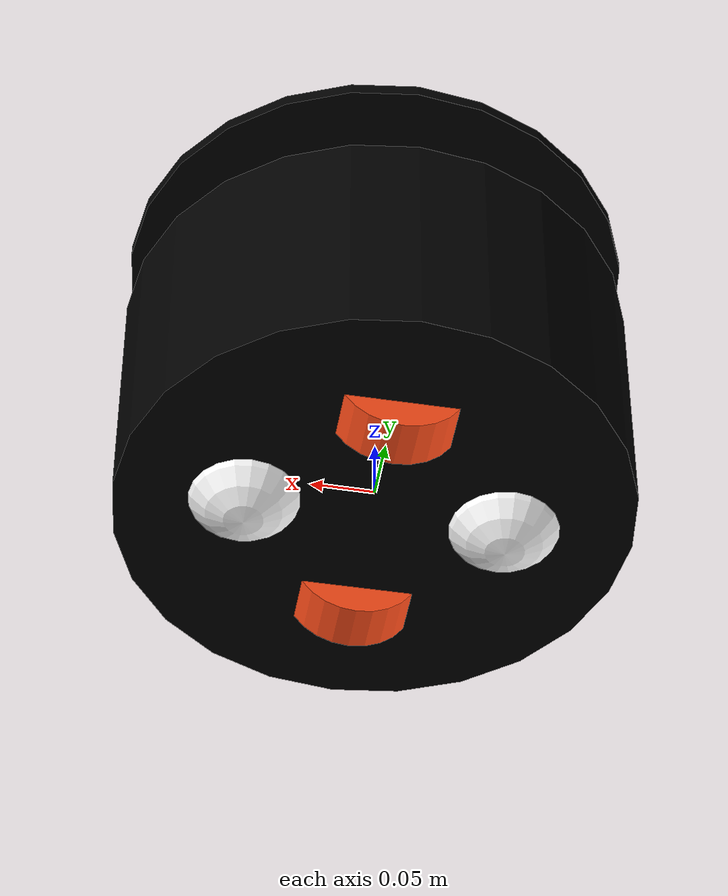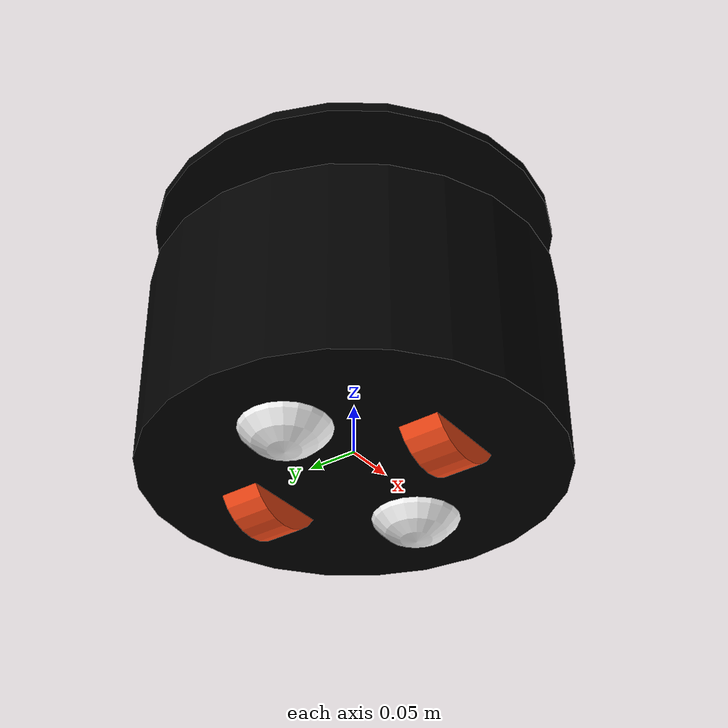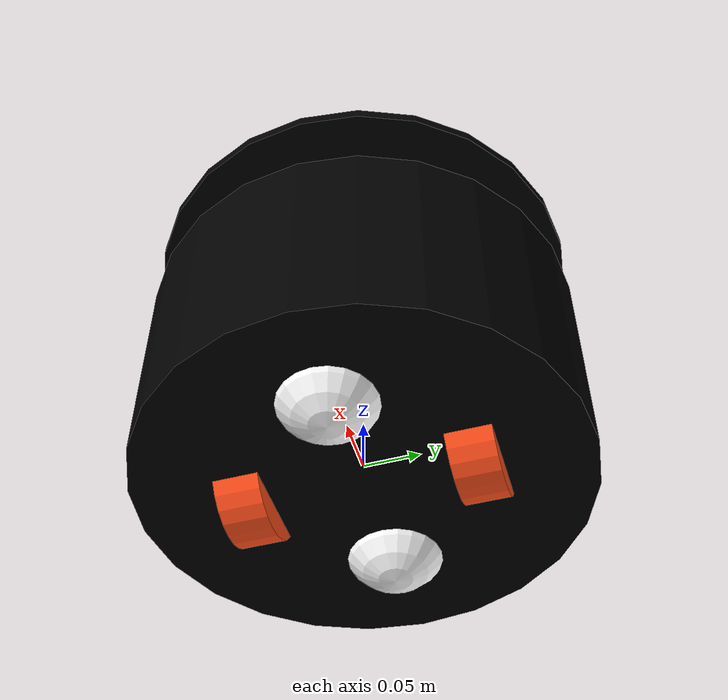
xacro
<?xml version="1.0"?>
<robot xmlns:xacro="http://www.ros.org/wiki/xacro" name="black_donut">

    <xacro:include filename="inertial_macros.xacro"/>

    <material name="white">
        <color rgba="1 1 1 1" />
    </material>

    <material name="orange">
        <color rgba="1 0.3 0.1 1"/>
    </material>

    <material name="blue">
        <color rgba="0.2 0.2 1 1"/>
    </material>

    <material name="black">
        <color rgba="0 0 0 1"/>
    </material>

    <!-- BASE_FOOTPRINT LINK -->

    <link name="base_footprint">

    </link>

    <!-- BASE LINK -->

    <joint name="base_link_joint" type="fixed">
        <parent link="base_footprint"/>
        <child link="base_link"/>
        <origin xyz="0 0 0"/>
    </joint>

    <link name="base_link">
        <visual>
            <origin xyz="0 0 0.075"/>
            <geometry>
                <cylinder radius="0.2" length="0.2"/>
            </geometry>1
            <material name="black"/>
        </visual>
        <collision>
            <origin xyz="0 0 0.075"/>
            <geometry>
                <box size="0.3 0.3 0.15"/>
            </geometry>
        </collision>
        <xacro:inertial_box mass="0.5" x="0.3" y="0.3" z="0.15">
            <origin xyz="0 0 0.075" rpy="0 0 0"/>
        </xacro:inertial_box>
    </link>

    <!-- TOP PLATE-->
    <joint name="hat_joint" type="fixed">
        <parent link="base_link"/>
        <child link="hat_link"/>
        <origin xyz="0 0 0"/>
    </joint>

    <link name="hat_link">
        <visual>
            <origin xyz="0 0 0.245"/>
            <geometry>
                <cylinder radius="0.2" length="0.01"/>
            </geometry>1
            <material name="black"/>
        </visual>
        <collision>
            <origin xyz="0 0 0.245"/>
            <geometry>
                <box size="0.3 0.3 0.15"/>
            </geometry>
        </collision>
        <xacro:inertial_box mass="0.1" x="0.1" y="0.1" z="0.1">
            <origin xyz="0 0 0.245" rpy="0 0 0"/>
        </xacro:inertial_box>
    </link>

    <!-- LEFT WHEEL LINK -->

    <joint name="left_wheel_joint" type="continuous">
        <parent link="base_link"/>
        <child link="left_wheel"/>
        <origin xyz="0 0.1 0" rpy="-${pi/2} 0 0" />
        <axis xyz="0 0 1"/>
    </joint>

    <link name="left_wheel">
        <visual>
            <geometry>
                <cylinder radius="0.05" length="0.04"/>
            </geometry>
            <material name="orange"/>
        </visual>
        <collision>
            <geometry>
                <cylinder radius="0.05" length="0.04"/>
            </geometry>
        </collision>
        <xacro:inertial_cylinder mass="0.1" length="0.04" radius="0.05">
            <origin xyz="0 0 0" rpy="0 0 0"/>
        </xacro:inertial_cylinder>
    </link>

    <!-- RIGHT WHEEL LINK -->

    <joint name="right_wheel_joint" type="continuous">
        <parent link="base_link"/>
        <child link="right_wheel"/>
        <origin xyz="0 -0.1 0" rpy="${pi/2} 0 0" />
        <axis xyz="0 0 -1"/>
    </joint>

    <link name="right_wheel">
        <visual>
            <geometry>
                <cylinder radius="0.05" length="0.04"/>
            </geometry>
            <material name="orange"/>
        </visual>
        <collision>
            <geometry>
                <cylinder radius="0.05" length="0.04"/>
            </geometry>
        </collision>
        <xacro:inertial_cylinder mass="0.1" length="0.04" radius="0.05">
            <origin xyz="0 0 0" rpy="0 0 0"/>
        </xacro:inertial_cylinder>
    </link>

    <!-- CASTER WHEEL LINK -->

    <joint name="caster_wheel_f_joint" type="fixed">
        <parent link="base_link"/>
        <child link="caster_wheel_f"/>
        <origin xyz="0.1 0 0"/>
    </joint>

    <link name="caster_wheel_f">
        <visual>
            <geometry>
                <sphere radius="0.05"/>
            </geometry>
            <material name="white"/>
        </visual>
        <collision>
            <geometry>
                <sphere radius="0.05"/>
            </geometry>
        </collision>
        <xacro:inertial_sphere mass="0.1" radius="0.05">
            <origin xyz="0 0 0" rpy="0 0 0"/>
        </xacro:inertial_sphere>
    </link>

    <joint name="caster_wheel_joint_b" type="fixed">
        <parent link="base_link"/>
        <child link="caster_wheel_b"/>
        <origin xyz="-0.1 0 0"/>
    </joint>

    <link name="caster_wheel_b">
        <visual>
            <geometry>
                <sphere radius="0.05"/>
            </geometry>
            <material name="white"/>
        </visual>
        <collision>
            <geometry>
                <sphere radius="0.05"/>
            </geometry>
        </collision>
        <xacro:inertial_sphere mass="0.1" radius="0.05">
            <origin xyz="0 0 0" rpy="0 0 0"/>
        </xacro:inertial_sphere>
    </link>

    <gazebo reference="base_link">
        <material>Gazebo/Black</material>
    </gazebo>

    <gazebo reference="right_wheel">
        <material>Gazebo/Orange</material>
    </gazebo>
    <gazebo reference="left_wheel">
        <material>Gazebo/Orange</material>
    </gazebo>
    <gazebo reference="hat_link">
        <material>Gazebo/Black</material>
        <mu1 value="0.001"/>
        <mu2 value="0.001"/>
    </gazebo>

    <gazebo reference="caster_wheel_f">
        <material>Gazebo/Black</material>
        <mu1 value="0.001"/>
        <mu2 value="0.001"/>
    </gazebo>
    <gazebo reference="caster_wheel_b">
        <material>Gazebo/Black</material>
        <mu1 value="0.001"/>
        <mu2 value="0.001"/>
    </gazebo>

</robot>
